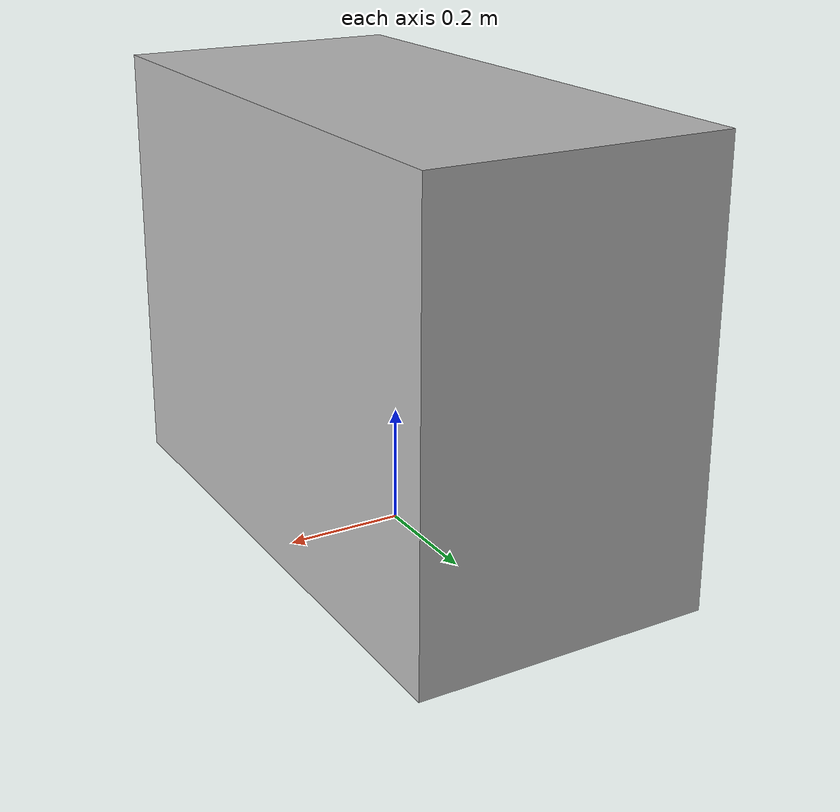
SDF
<?xml version="1.0"?>
<sdf version="1.6">
  <model name="rwc2019/sideboard">
    <link name="1_link">
      <collision name="1_col">
        <geometry>
          <box>
            <size>0.5 1.01 0.753</size>
          </box>
        </geometry>
      </collision>
      <visual name="1_vis">
        <geometry>
          <box>
            <size>0.5 1.01 0.753</size>
          </box>
        </geometry>
      </visual>
      <pose>0.0 0.0 0.3765 0 0 0</pose>
    </link>
    <link name="on_top_of">
      <virtual_volume name="on_top_of_vv">
        <geometry>
          <box>
            <size>0.45 0.95 0.25</size>
          </box>
        </geometry>
        <pose>0.03 0.0 0.898 0 0 0</pose>
      </virtual_volume>
    </link>
    <link name="in_front_of">
      <virtual_volume name="in_front_of_vv">
        <geometry>
          <box>
            <size>0.2 0.5 0.01</size>
          </box>
        </geometry>
        <pose>0.75 0.0 0.005 0 0 0</pose>
      </virtual_volume>
    </link>
    <static>true</static>
  </model>
</sdf>
